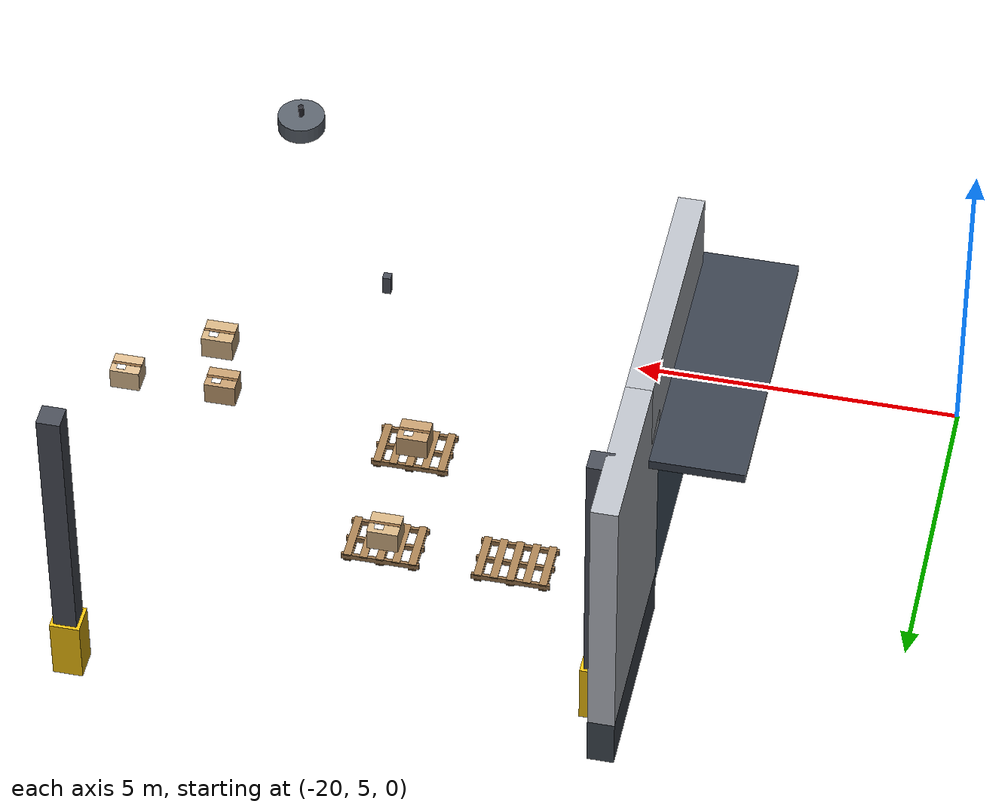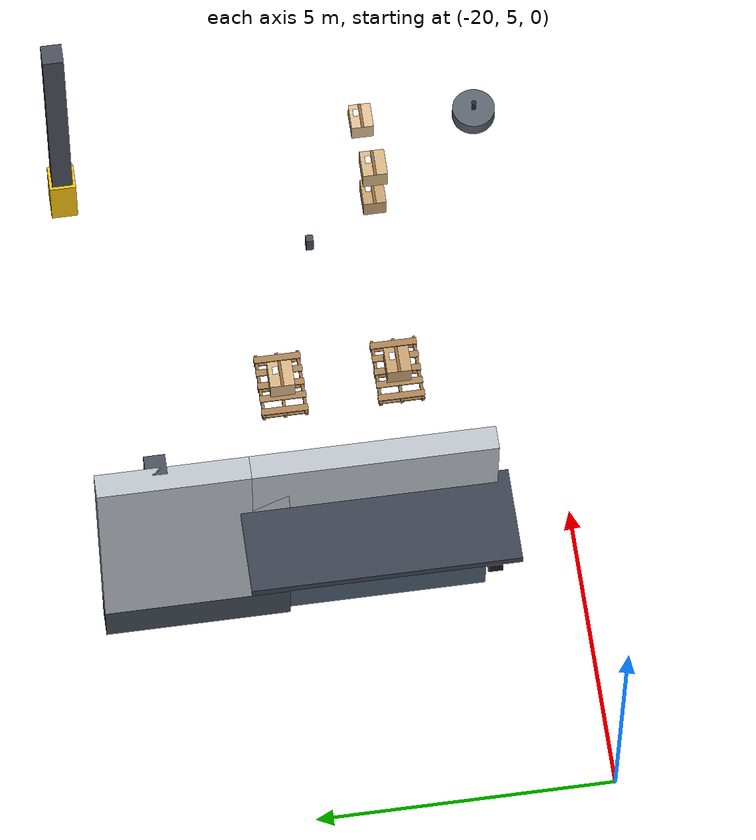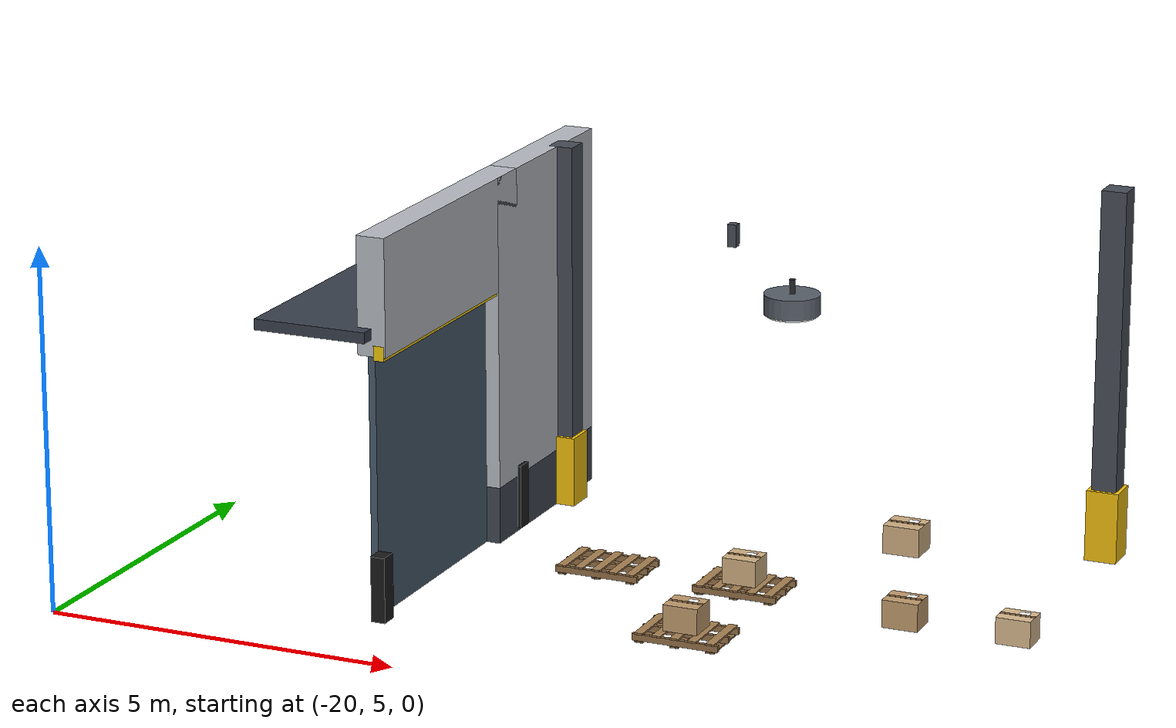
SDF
<sdf version="1.8">
 <world name="warehouse_3d">
  <model name="warehouse_architecture">
   <static>true</static>
   <link name="wall_west_n_base">
    <pose>-16.0000 11.4500 0.4000 0.0000 0.0000 0.0000</pose>
    <collision name="wall_west_n_base_col">
     <geometry><box><size>0.4000 3.1000 0.8000</size></box></geometry>
    </collision>
    <visual name="wall_west_n_base_vis">
     <geometry><box><size>0.4000 3.1000 0.8000</size></box></geometry>
     <material>
      <ambient>0.163 0.182 0.208 1.00</ambient>
      <diffuse>0.250 0.280 0.320 1.00</diffuse>
      <specular>0.15 0.15 0.15 1.0</specular>
     </material>
    </visual>
   </link>
   <link name="wall_west_n_upper">
    <pose>-16.0000 11.4500 3.0000 0.0000 0.0000 0.0000</pose>
    <collision name="wall_west_n_upper_col">
     <geometry><box><size>0.4000 3.1000 4.4000</size></box></geometry>
    </collision>
    <visual name="wall_west_n_upper_vis">
     <geometry><box><size>0.4000 3.1000 4.4000</size></box></geometry>
     <material>
      <ambient>0.468 0.481 0.501 1.00</ambient>
      <diffuse>0.720 0.740 0.770 1.00</diffuse>
      <specular>0.15 0.15 0.15 1.0</specular>
     </material>
    </visual>
   </link>
   <link name="dock_shutter_n_hdr">
    <pose>-16.0000 8.5000 4.4000 0.0000 0.0000 0.0000</pose>
    <collision name="dock_shutter_n_hdr_col">
     <geometry><box><size>0.4000 4.0000 1.6000</size></box></geometry>
    </collision>
    <visual name="dock_shutter_n_hdr_vis">
     <geometry><box><size>0.4000 4.0000 1.6000</size></box></geometry>
     <material>
      <ambient>0.468 0.481 0.501 1.00</ambient>
      <diffuse>0.720 0.740 0.770 1.00</diffuse>
      <specular>0.15 0.15 0.15 1.0</specular>
     </material>
    </visual>
   </link>
   <link name="rollup_door_inbound">
    <pose>-16.0500 8.5000 1.8000 0.0000 0.0000 0.0000</pose>
    <collision name="rollup_door_inbound_col">
     <geometry><box><size>0.1000 3.8000 3.6000</size></box></geometry>
    </collision>
    <visual name="rollup_door_inbound_vis">
     <geometry><box><size>0.1000 3.8000 3.6000</size></box></geometry>
     <material>
      <ambient>0.182 0.227 0.273 1.00</ambient>
      <diffuse>0.280 0.350 0.420 1.00</diffuse>
      <specular>0.15 0.15 0.15 1.0</specular>
     </material>
    </visual>
   </link>
   <link name="rollup_hazard_hdr_in">
    <pose>-15.9000 8.5000 3.6500 0.0000 0.0000 0.0000</pose>
    <collision name="rollup_hazard_hdr_in_col">
     <geometry><box><size>0.1500 4.0000 0.2000</size></box></geometry>
    </collision>
    <visual name="rollup_hazard_hdr_in_vis">
     <geometry><box><size>0.1500 4.0000 0.2000</size></box></geometry>
     <material>
      <ambient>0.617 0.520 0.033 1.00</ambient>
      <diffuse>0.950 0.800 0.050 1.00</diffuse>
      <specular>0.15 0.15 0.15 1.0</specular>
     </material>
    </visual>
   </link>
   <link name="dock_canopy_in">
    <pose>-16.8000 8.5000 3.9000 0.0000 0.0000 0.0000</pose>
    <collision name="dock_canopy_in_col">
     <geometry><box><size>1.6000 4.4000 0.1500</size></box></geometry>
    </collision>
    <visual name="dock_canopy_in_vis">
     <geometry><box><size>1.6000 4.4000 0.1500</size></box></geometry>
     <material>
      <ambient>0.143 0.163 0.195 1.00</ambient>
      <diffuse>0.220 0.250 0.300 1.00</diffuse>
      <specular>0.15 0.15 0.15 1.0</specular>
     </material>
    </visual>
   </link>
   <link name="dock_bumper_in_1">
    <pose>-15.8500 6.4000 0.5000 0.0000 0.0000 0.0000</pose>
    <collision name="dock_bumper_in_1_col">
     <geometry><box><size>0.2000 0.2500 0.9000</size></box></geometry>
    </collision>
    <visual name="dock_bumper_in_1_vis">
     <geometry><box><size>0.2000 0.2500 0.9000</size></box></geometry>
     <material>
      <ambient>0.065 0.065 0.065 1.00</ambient>
      <diffuse>0.100 0.100 0.100 1.00</diffuse>
      <specular>0.15 0.15 0.15 1.0</specular>
     </material>
    </visual>
   </link>
   <link name="dock_bumper_in_2">
    <pose>-15.8500 10.6000 0.5000 0.0000 0.0000 0.0000</pose>
    <collision name="dock_bumper_in_2_col">
     <geometry><box><size>0.2000 0.2500 0.9000</size></box></geometry>
    </collision>
    <visual name="dock_bumper_in_2_vis">
     <geometry><box><size>0.2000 0.2500 0.9000</size></box></geometry>
     <material>
      <ambient>0.065 0.065 0.065 1.00</ambient>
      <diffuse>0.100 0.100 0.100 1.00</diffuse>
      <specular>0.15 0.15 0.15 1.0</specular>
     </material>
    </visual>
   </link>
   <link name="col_3_base">
    <pose>-15.7500 12.0000 0.5000 0.0000 0.0000 0.0000</pose>
    <collision name="col_3_base_col"><geometry><box><size>0.4500 0.4500 1.0000</size></box></geometry></collision>
    <visual name="col_3_base_vis">
     <geometry><box><size>0.4500 0.4500 1.0000</size></box></geometry>
     <material>
      <ambient>0.617 0.488 0.033 1.00</ambient>
      <diffuse>0.950 0.750 0.050 1.00</diffuse>
      <specular>0.15 0.15 0.15 1.0</specular>
     </material>
    </visual>
   </link>
   <link name="col_3_stem">
    <pose>-15.7500 12.0000 3.1000 0.0000 0.0000 0.0000</pose>
    <collision name="col_3_stem_col"><geometry><box><size>0.3500 0.3500 4.2000</size></box></geometry></collision>
    <visual name="col_3_stem_vis">
     <geometry><box><size>0.3500 0.3500 4.2000</size></box></geometry>
     <material>
      <ambient>0.182 0.195 0.221 1.00</ambient>
      <diffuse>0.280 0.300 0.340 1.00</diffuse>
      <specular>0.15 0.15 0.15 1.0</specular>
     </material>
    </visual>
   </link>
   <link name="col_9_base">
    <pose>-8.0000 12.7500 0.5000 0.0000 0.0000 0.0000</pose>
    <collision name="col_9_base_col"><geometry><box><size>0.4500 0.4500 1.0000</size></box></geometry></collision>
    <visual name="col_9_base_vis">
     <geometry><box><size>0.4500 0.4500 1.0000</size></box></geometry>
     <material>
      <ambient>0.617 0.488 0.033 1.00</ambient>
      <diffuse>0.950 0.750 0.050 1.00</diffuse>
      <specular>0.15 0.15 0.15 1.0</specular>
     </material>
    </visual>
   </link>
   <link name="col_9_stem">
    <pose>-8.0000 12.7500 3.1000 0.0000 0.0000 0.0000</pose>
    <collision name="col_9_stem_col"><geometry><box><size>0.3500 0.3500 4.2000</size></box></geometry></collision>
    <visual name="col_9_stem_vis">
     <geometry><box><size>0.3500 0.3500 4.2000</size></box></geometry>
     <material>
      <ambient>0.182 0.195 0.221 1.00</ambient>
      <diffuse>0.280 0.300 0.340 1.00</diffuse>
      <specular>0.15 0.15 0.15 1.0</specular>
     </material>
    </visual>
   </link>
   <link name="truss_web_3_0">
    <pose>-12.0000 9.0000 5.0500 0.0000 0.0000 0.0000</pose>
    <visual name="truss_web_3_0_vis">
     <geometry><box><size>0.1200 0.1200 0.3000</size></box></geometry>
     <material>
      <ambient>0.182 0.195 0.221 1.00</ambient>
      <diffuse>0.280 0.300 0.340 1.00</diffuse>
      <specular>0.15 0.15 0.15 1.0</specular>
     </material>
    </visual>
   </link>
   <link name="fixture_bell_2">
    <pose>-10.0000 6.0000 5.1500 0.0000 0.0000 0.0000</pose>
    <visual name="fixture_bell_2_vis">
     <geometry><cylinder><radius>0.3500</radius><length>0.2500</length></cylinder></geometry>
     <material>
      <ambient>0.227 0.247 0.273 1.00</ambient>
      <diffuse>0.350 0.380 0.420 1.00</diffuse>
      <specular>0.2 0.2 0.2 1.0</specular>
     </material>
    </visual>
   </link>
   <link name="fixture_stem_2">
    <pose>-10.0000 6.0000 5.3500 0.0000 0.0000 0.0000</pose>
    <visual name="fixture_stem_2_vis">
     <geometry><cylinder><radius>0.0400</radius><length>0.2000</length></cylinder></geometry>
     <material>
      <ambient>0.098 0.098 0.117 1.00</ambient>
      <diffuse>0.150 0.150 0.180 1.00</diffuse>
      <specular>0.2 0.2 0.2 1.0</specular>
     </material>
    </visual>
   </link>
   <link name="fixture_lens_2">
    <pose>-10.0000 6.0000 5.0200 0.0000 0.0000 0.0000</pose>
    <visual name="fixture_lens_2_vis">
     <geometry><cylinder><radius>0.3200</radius><length>0.0400</length></cylinder></geometry>
     <material>
      <ambient>0.617 0.637 0.650 1.00</ambient>
      <diffuse>0.950 0.980 1.000 1.00</diffuse>
      <specular>0.2 0.2 0.2 1.0</specular>
      <emissive>0.850 0.880 0.950 1.0</emissive>
     </material>
    </visual>
   </link>
  </model>
  <model name="pallet_dock_1">
   <static>true</static>
   <pose>-12.00 9.50 0.00 0 0 0</pose>
   <link name="stringer_0">
    <pose>0.0000 -0.3600 0.0650 0.0000 0.0000 0.0000</pose>
    <collision name="stringer_0_col"><geometry><box><size>1.2000 0.0500 0.0900</size></box></geometry></collision>
    <visual name="stringer_0_vis">
     <geometry><box><size>1.2000 0.0500 0.0900</size></box></geometry>
     <material>
      <ambient>0.377 0.286 0.182 1.00</ambient>
      <diffuse>0.580 0.440 0.280 1.00</diffuse>
      <specular>0.15 0.15 0.15 1.0</specular>
     </material>
    </visual>
   </link>
   <link name="stringer_1">
    <pose>0.0000 0.0000 0.0650 0.0000 0.0000 0.0000</pose>
    <collision name="stringer_1_col"><geometry><box><size>1.2000 0.0500 0.0900</size></box></geometry></collision>
    <visual name="stringer_1_vis">
     <geometry><box><size>1.2000 0.0500 0.0900</size></box></geometry>
     <material>
      <ambient>0.377 0.286 0.182 1.00</ambient>
      <diffuse>0.580 0.440 0.280 1.00</diffuse>
      <specular>0.15 0.15 0.15 1.0</specular>
     </material>
    </visual>
   </link>
   <link name="stringer_2">
    <pose>0.0000 0.3600 0.0650 0.0000 0.0000 0.0000</pose>
    <collision name="stringer_2_col"><geometry><box><size>1.2000 0.0500 0.0900</size></box></geometry></collision>
    <visual name="stringer_2_vis">
     <geometry><box><size>1.2000 0.0500 0.0900</size></box></geometry>
     <material>
      <ambient>0.377 0.286 0.182 1.00</ambient>
      <diffuse>0.580 0.440 0.280 1.00</diffuse>
      <specular>0.15 0.15 0.15 1.0</specular>
     </material>
    </visual>
   </link>
   <link name="top_slat_0">
    <pose>-0.5000 0.0000 0.1200 0.0000 0.0000 0.0000</pose>
    <collision name="top_slat_0_col"><geometry><box><size>0.1200 0.8000 0.0220</size></box></geometry></collision>
    <visual name="top_slat_0_vis">
     <geometry><box><size>0.1200 0.8000 0.0220</size></box></geometry>
     <material>
      <ambient>0.423 0.325 0.208 1.00</ambient>
      <diffuse>0.650 0.500 0.320 1.00</diffuse>
      <specular>0.15 0.15 0.15 1.0</specular>
     </material>
    </visual>
   </link>
   <link name="top_slat_1">
    <pose>-0.2500 0.0000 0.1200 0.0000 0.0000 0.0000</pose>
    <collision name="top_slat_1_col"><geometry><box><size>0.1200 0.8000 0.0220</size></box></geometry></collision>
    <visual name="top_slat_1_vis">
     <geometry><box><size>0.1200 0.8000 0.0220</size></box></geometry>
     <material>
      <ambient>0.423 0.325 0.208 1.00</ambient>
      <diffuse>0.650 0.500 0.320 1.00</diffuse>
      <specular>0.15 0.15 0.15 1.0</specular>
     </material>
    </visual>
   </link>
   <link name="top_slat_2">
    <pose>0.0000 0.0000 0.1200 0.0000 0.0000 0.0000</pose>
    <collision name="top_slat_2_col"><geometry><box><size>0.1200 0.8000 0.0220</size></box></geometry></collision>
    <visual name="top_slat_2_vis">
     <geometry><box><size>0.1200 0.8000 0.0220</size></box></geometry>
     <material>
      <ambient>0.423 0.325 0.208 1.00</ambient>
      <diffuse>0.650 0.500 0.320 1.00</diffuse>
      <specular>0.15 0.15 0.15 1.0</specular>
     </material>
    </visual>
   </link>
   <link name="top_slat_3">
    <pose>0.2500 0.0000 0.1200 0.0000 0.0000 0.0000</pose>
    <collision name="top_slat_3_col"><geometry><box><size>0.1200 0.8000 0.0220</size></box></geometry></collision>
    <visual name="top_slat_3_vis">
     <geometry><box><size>0.1200 0.8000 0.0220</size></box></geometry>
     <material>
      <ambient>0.423 0.325 0.208 1.00</ambient>
      <diffuse>0.650 0.500 0.320 1.00</diffuse>
      <specular>0.15 0.15 0.15 1.0</specular>
     </material>
    </visual>
   </link>
   <link name="top_slat_4">
    <pose>0.5000 0.0000 0.1200 0.0000 0.0000 0.0000</pose>
    <collision name="top_slat_4_col"><geometry><box><size>0.1200 0.8000 0.0220</size></box></geometry></collision>
    <visual name="top_slat_4_vis">
     <geometry><box><size>0.1200 0.8000 0.0220</size></box></geometry>
     <material>
      <ambient>0.423 0.325 0.208 1.00</ambient>
      <diffuse>0.650 0.500 0.320 1.00</diffuse>
      <specular>0.15 0.15 0.15 1.0</specular>
     </material>
    </visual>
   </link>
   <link name="bot_slat_0">
    <pose>-0.5000 0.0000 0.0100 0.0000 0.0000 0.0000</pose>
    <collision name="bot_slat_0_col"><geometry><box><size>0.1200 0.8000 0.0200</size></box></geometry></collision>
    <visual name="bot_slat_0_vis">
     <geometry><box><size>0.1200 0.8000 0.0200</size></box></geometry>
     <material>
      <ambient>0.358 0.273 0.169 1.00</ambient>
      <diffuse>0.550 0.420 0.260 1.00</diffuse>
      <specular>0.15 0.15 0.15 1.0</specular>
     </material>
    </visual>
   </link>
   <link name="bot_slat_1">
    <pose>0.0000 0.0000 0.0100 0.0000 0.0000 0.0000</pose>
    <collision name="bot_slat_1_col"><geometry><box><size>0.1200 0.8000 0.0200</size></box></geometry></collision>
    <visual name="bot_slat_1_vis">
     <geometry><box><size>0.1200 0.8000 0.0200</size></box></geometry>
     <material>
      <ambient>0.358 0.273 0.169 1.00</ambient>
      <diffuse>0.550 0.420 0.260 1.00</diffuse>
      <specular>0.15 0.15 0.15 1.0</specular>
     </material>
    </visual>
   </link>
   <link name="bot_slat_2">
    <pose>0.5000 0.0000 0.0100 0.0000 0.0000 0.0000</pose>
    <collision name="bot_slat_2_col"><geometry><box><size>0.1200 0.8000 0.0200</size></box></geometry></collision>
    <visual name="bot_slat_2_vis">
     <geometry><box><size>0.1200 0.8000 0.0200</size></box></geometry>
     <material>
      <ambient>0.358 0.273 0.169 1.00</ambient>
      <diffuse>0.550 0.420 0.260 1.00</diffuse>
      <specular>0.15 0.15 0.15 1.0</specular>
     </material>
    </visual>
   </link>
  </model>
  <model name="pallet_dock_2">
   <static>true</static>
   <pose>-12.00 7.50 0.00 0 0 0</pose>
   <link name="stringer_0">
    <pose>0.0000 -0.3600 0.0650 0.0000 0.0000 0.0000</pose>
    <collision name="stringer_0_col"><geometry><box><size>1.2000 0.0500 0.0900</size></box></geometry></collision>
    <visual name="stringer_0_vis">
     <geometry><box><size>1.2000 0.0500 0.0900</size></box></geometry>
     <material>
      <ambient>0.377 0.286 0.182 1.00</ambient>
      <diffuse>0.580 0.440 0.280 1.00</diffuse>
      <specular>0.15 0.15 0.15 1.0</specular>
     </material>
    </visual>
   </link>
   <link name="stringer_1">
    <pose>0.0000 0.0000 0.0650 0.0000 0.0000 0.0000</pose>
    <collision name="stringer_1_col"><geometry><box><size>1.2000 0.0500 0.0900</size></box></geometry></collision>
    <visual name="stringer_1_vis">
     <geometry><box><size>1.2000 0.0500 0.0900</size></box></geometry>
     <material>
      <ambient>0.377 0.286 0.182 1.00</ambient>
      <diffuse>0.580 0.440 0.280 1.00</diffuse>
      <specular>0.15 0.15 0.15 1.0</specular>
     </material>
    </visual>
   </link>
   <link name="stringer_2">
    <pose>0.0000 0.3600 0.0650 0.0000 0.0000 0.0000</pose>
    <collision name="stringer_2_col"><geometry><box><size>1.2000 0.0500 0.0900</size></box></geometry></collision>
    <visual name="stringer_2_vis">
     <geometry><box><size>1.2000 0.0500 0.0900</size></box></geometry>
     <material>
      <ambient>0.377 0.286 0.182 1.00</ambient>
      <diffuse>0.580 0.440 0.280 1.00</diffuse>
      <specular>0.15 0.15 0.15 1.0</specular>
     </material>
    </visual>
   </link>
   <link name="top_slat_0">
    <pose>-0.5000 0.0000 0.1200 0.0000 0.0000 0.0000</pose>
    <collision name="top_slat_0_col"><geometry><box><size>0.1200 0.8000 0.0220</size></box></geometry></collision>
    <visual name="top_slat_0_vis">
     <geometry><box><size>0.1200 0.8000 0.0220</size></box></geometry>
     <material>
      <ambient>0.423 0.325 0.208 1.00</ambient>
      <diffuse>0.650 0.500 0.320 1.00</diffuse>
      <specular>0.15 0.15 0.15 1.0</specular>
     </material>
    </visual>
   </link>
   <link name="top_slat_1">
    <pose>-0.2500 0.0000 0.1200 0.0000 0.0000 0.0000</pose>
    <collision name="top_slat_1_col"><geometry><box><size>0.1200 0.8000 0.0220</size></box></geometry></collision>
    <visual name="top_slat_1_vis">
     <geometry><box><size>0.1200 0.8000 0.0220</size></box></geometry>
     <material>
      <ambient>0.423 0.325 0.208 1.00</ambient>
      <diffuse>0.650 0.500 0.320 1.00</diffuse>
      <specular>0.15 0.15 0.15 1.0</specular>
     </material>
    </visual>
   </link>
   <link name="top_slat_2">
    <pose>0.0000 0.0000 0.1200 0.0000 0.0000 0.0000</pose>
    <collision name="top_slat_2_col"><geometry><box><size>0.1200 0.8000 0.0220</size></box></geometry></collision>
    <visual name="top_slat_2_vis">
     <geometry><box><size>0.1200 0.8000 0.0220</size></box></geometry>
     <material>
      <ambient>0.423 0.325 0.208 1.00</ambient>
      <diffuse>0.650 0.500 0.320 1.00</diffuse>
      <specular>0.15 0.15 0.15 1.0</specular>
     </material>
    </visual>
   </link>
   <link name="top_slat_3">
    <pose>0.2500 0.0000 0.1200 0.0000 0.0000 0.0000</pose>
    <collision name="top_slat_3_col"><geometry><box><size>0.1200 0.8000 0.0220</size></box></geometry></collision>
    <visual name="top_slat_3_vis">
     <geometry><box><size>0.1200 0.8000 0.0220</size></box></geometry>
     <material>
      <ambient>0.423 0.325 0.208 1.00</ambient>
      <diffuse>0.650 0.500 0.320 1.00</diffuse>
      <specular>0.15 0.15 0.15 1.0</specular>
     </material>
    </visual>
   </link>
   <link name="top_slat_4">
    <pose>0.5000 0.0000 0.1200 0.0000 0.0000 0.0000</pose>
    <collision name="top_slat_4_col"><geometry><box><size>0.1200 0.8000 0.0220</size></box></geometry></collision>
    <visual name="top_slat_4_vis">
     <geometry><box><size>0.1200 0.8000 0.0220</size></box></geometry>
     <material>
      <ambient>0.423 0.325 0.208 1.00</ambient>
      <diffuse>0.650 0.500 0.320 1.00</diffuse>
      <specular>0.15 0.15 0.15 1.0</specular>
     </material>
    </visual>
   </link>
   <link name="bot_slat_0">
    <pose>-0.5000 0.0000 0.0100 0.0000 0.0000 0.0000</pose>
    <collision name="bot_slat_0_col"><geometry><box><size>0.1200 0.8000 0.0200</size></box></geometry></collision>
    <visual name="bot_slat_0_vis">
     <geometry><box><size>0.1200 0.8000 0.0200</size></box></geometry>
     <material>
      <ambient>0.358 0.273 0.169 1.00</ambient>
      <diffuse>0.550 0.420 0.260 1.00</diffuse>
      <specular>0.15 0.15 0.15 1.0</specular>
     </material>
    </visual>
   </link>
   <link name="bot_slat_1">
    <pose>0.0000 0.0000 0.0100 0.0000 0.0000 0.0000</pose>
    <collision name="bot_slat_1_col"><geometry><box><size>0.1200 0.8000 0.0200</size></box></geometry></collision>
    <visual name="bot_slat_1_vis">
     <geometry><box><size>0.1200 0.8000 0.0200</size></box></geometry>
     <material>
      <ambient>0.358 0.273 0.169 1.00</ambient>
      <diffuse>0.550 0.420 0.260 1.00</diffuse>
      <specular>0.15 0.15 0.15 1.0</specular>
     </material>
    </visual>
   </link>
   <link name="bot_slat_2">
    <pose>0.5000 0.0000 0.0100 0.0000 0.0000 0.0000</pose>
    <collision name="bot_slat_2_col"><geometry><box><size>0.1200 0.8000 0.0200</size></box></geometry></collision>
    <visual name="bot_slat_2_vis">
     <geometry><box><size>0.1200 0.8000 0.0200</size></box></geometry>
     <material>
      <ambient>0.358 0.273 0.169 1.00</ambient>
      <diffuse>0.550 0.420 0.260 1.00</diffuse>
      <specular>0.15 0.15 0.15 1.0</specular>
     </material>
    </visual>
   </link>
  </model>
  <model name="pallet_stage_dock">
   <static>true</static>
   <pose>-14.00 9.50 0.00 0 0 0</pose>
   <link name="stringer_0">
    <pose>0.0000 -0.3600 0.0650 0.0000 0.0000 0.0000</pose>
    <collision name="stringer_0_col"><geometry><box><size>1.2000 0.0500 0.0900</size></box></geometry></collision>
    <visual name="stringer_0_vis">
     <geometry><box><size>1.2000 0.0500 0.0900</size></box></geometry>
     <material>
      <ambient>0.377 0.286 0.182 1.00</ambient>
      <diffuse>0.580 0.440 0.280 1.00</diffuse>
      <specular>0.15 0.15 0.15 1.0</specular>
     </material>
    </visual>
   </link>
   <link name="stringer_1">
    <pose>0.0000 0.0000 0.0650 0.0000 0.0000 0.0000</pose>
    <collision name="stringer_1_col"><geometry><box><size>1.2000 0.0500 0.0900</size></box></geometry></collision>
    <visual name="stringer_1_vis">
     <geometry><box><size>1.2000 0.0500 0.0900</size></box></geometry>
     <material>
      <ambient>0.377 0.286 0.182 1.00</ambient>
      <diffuse>0.580 0.440 0.280 1.00</diffuse>
      <specular>0.15 0.15 0.15 1.0</specular>
     </material>
    </visual>
   </link>
   <link name="stringer_2">
    <pose>0.0000 0.3600 0.0650 0.0000 0.0000 0.0000</pose>
    <collision name="stringer_2_col"><geometry><box><size>1.2000 0.0500 0.0900</size></box></geometry></collision>
    <visual name="stringer_2_vis">
     <geometry><box><size>1.2000 0.0500 0.0900</size></box></geometry>
     <material>
      <ambient>0.377 0.286 0.182 1.00</ambient>
      <diffuse>0.580 0.440 0.280 1.00</diffuse>
      <specular>0.15 0.15 0.15 1.0</specular>
     </material>
    </visual>
   </link>
   <link name="top_slat_0">
    <pose>-0.5000 0.0000 0.1200 0.0000 0.0000 0.0000</pose>
    <collision name="top_slat_0_col"><geometry><box><size>0.1200 0.8000 0.0220</size></box></geometry></collision>
    <visual name="top_slat_0_vis">
     <geometry><box><size>0.1200 0.8000 0.0220</size></box></geometry>
     <material>
      <ambient>0.423 0.325 0.208 1.00</ambient>
      <diffuse>0.650 0.500 0.320 1.00</diffuse>
      <specular>0.15 0.15 0.15 1.0</specular>
     </material>
    </visual>
   </link>
   <link name="top_slat_1">
    <pose>-0.2500 0.0000 0.1200 0.0000 0.0000 0.0000</pose>
    <collision name="top_slat_1_col"><geometry><box><size>0.1200 0.8000 0.0220</size></box></geometry></collision>
    <visual name="top_slat_1_vis">
     <geometry><box><size>0.1200 0.8000 0.0220</size></box></geometry>
     <material>
      <ambient>0.423 0.325 0.208 1.00</ambient>
      <diffuse>0.650 0.500 0.320 1.00</diffuse>
      <specular>0.15 0.15 0.15 1.0</specular>
     </material>
    </visual>
   </link>
   <link name="top_slat_2">
    <pose>0.0000 0.0000 0.1200 0.0000 0.0000 0.0000</pose>
    <collision name="top_slat_2_col"><geometry><box><size>0.1200 0.8000 0.0220</size></box></geometry></collision>
    <visual name="top_slat_2_vis">
     <geometry><box><size>0.1200 0.8000 0.0220</size></box></geometry>
     <material>
      <ambient>0.423 0.325 0.208 1.00</ambient>
      <diffuse>0.650 0.500 0.320 1.00</diffuse>
      <specular>0.15 0.15 0.15 1.0</specular>
     </material>
    </visual>
   </link>
   <link name="top_slat_3">
    <pose>0.2500 0.0000 0.1200 0.0000 0.0000 0.0000</pose>
    <collision name="top_slat_3_col"><geometry><box><size>0.1200 0.8000 0.0220</size></box></geometry></collision>
    <visual name="top_slat_3_vis">
     <geometry><box><size>0.1200 0.8000 0.0220</size></box></geometry>
     <material>
      <ambient>0.423 0.325 0.208 1.00</ambient>
      <diffuse>0.650 0.500 0.320 1.00</diffuse>
      <specular>0.15 0.15 0.15 1.0</specular>
     </material>
    </visual>
   </link>
   <link name="top_slat_4">
    <pose>0.5000 0.0000 0.1200 0.0000 0.0000 0.0000</pose>
    <collision name="top_slat_4_col"><geometry><box><size>0.1200 0.8000 0.0220</size></box></geometry></collision>
    <visual name="top_slat_4_vis">
     <geometry><box><size>0.1200 0.8000 0.0220</size></box></geometry>
     <material>
      <ambient>0.423 0.325 0.208 1.00</ambient>
      <diffuse>0.650 0.500 0.320 1.00</diffuse>
      <specular>0.15 0.15 0.15 1.0</specular>
     </material>
    </visual>
   </link>
   <link name="bot_slat_0">
    <pose>-0.5000 0.0000 0.0100 0.0000 0.0000 0.0000</pose>
    <collision name="bot_slat_0_col"><geometry><box><size>0.1200 0.8000 0.0200</size></box></geometry></collision>
    <visual name="bot_slat_0_vis">
     <geometry><box><size>0.1200 0.8000 0.0200</size></box></geometry>
     <material>
      <ambient>0.358 0.273 0.169 1.00</ambient>
      <diffuse>0.550 0.420 0.260 1.00</diffuse>
      <specular>0.15 0.15 0.15 1.0</specular>
     </material>
    </visual>
   </link>
   <link name="bot_slat_1">
    <pose>0.0000 0.0000 0.0100 0.0000 0.0000 0.0000</pose>
    <collision name="bot_slat_1_col"><geometry><box><size>0.1200 0.8000 0.0200</size></box></geometry></collision>
    <visual name="bot_slat_1_vis">
     <geometry><box><size>0.1200 0.8000 0.0200</size></box></geometry>
     <material>
      <ambient>0.358 0.273 0.169 1.00</ambient>
      <diffuse>0.550 0.420 0.260 1.00</diffuse>
      <specular>0.15 0.15 0.15 1.0</specular>
     </material>
    </visual>
   </link>
   <link name="bot_slat_2">
    <pose>0.5000 0.0000 0.0100 0.0000 0.0000 0.0000</pose>
    <collision name="bot_slat_2_col"><geometry><box><size>0.1200 0.8000 0.0200</size></box></geometry></collision>
    <visual name="bot_slat_2_vis">
     <geometry><box><size>0.1200 0.8000 0.0200</size></box></geometry>
     <material>
      <ambient>0.358 0.273 0.169 1.00</ambient>
      <diffuse>0.550 0.420 0.260 1.00</diffuse>
      <specular>0.15 0.15 0.15 1.0</specular>
     </material>
    </visual>
   </link>
  </model>
  <model name="package_P041">
   <static>true</static>
   <pose>-9.00 7.50 0.82 0 0 0</pose>
   <link name="box_link">
    <collision name="box_col"><geometry><box><size>0.48 0.39 0.37</size></box></geometry></collision>
    <visual name="box_vis">
     <geometry><box><size>0.48 0.39 0.37</size></box></geometry>
     <material>
      <ambient>0.53 0.43 0.30 1.0</ambient>
      <diffuse>0.76 0.61 0.43 1.0</diffuse>
      <specular>0.08 0.08 0.08 1.0</specular>
     </material>
    </visual>
    <visual name="top_tape">
     <pose>0 0 0.1860 0 0 0</pose>
     <geometry><box><size>0.482 0.05 0.002</size></box></geometry>
     <material><ambient>0.48 0.35 0.20 1.0</ambient><diffuse>0.55 0.40 0.24 1.0</diffuse></material>
    </visual>
    <visual name="shipping_label">
     <pose>0.072 0.078 0.1870 0 0 0</pose>
     <geometry><box><size>0.14 0.10 0.002</size></box></geometry>
     <material><ambient>0.92 0.92 0.92 1.0</ambient><diffuse>0.98 0.98 0.98 1.0</diffuse></material>
    </visual>
   </link>
  </model>
  <model name="package_P042">
   <static>true</static>
   <pose>-7.50 7.50 0.82 0 0 0</pose>
   <link name="box_link">
    <collision name="box_col"><geometry><box><size>0.46 0.38 0.35</size></box></geometry></collision>
    <visual name="box_vis">
     <geometry><box><size>0.46 0.38 0.35</size></box></geometry>
     <material>
      <ambient>0.60 0.51 0.39 1.0</ambient>
      <diffuse>0.86 0.73 0.56 1.0</diffuse>
      <specular>0.08 0.08 0.08 1.0</specular>
     </material>
    </visual>
    <visual name="top_tape">
     <pose>0 0 0.1760 0 0 0</pose>
     <geometry><box><size>0.462 0.05 0.002</size></box></geometry>
     <material><ambient>0.48 0.35 0.20 1.0</ambient><diffuse>0.55 0.40 0.24 1.0</diffuse></material>
    </visual>
    <visual name="shipping_label">
     <pose>0.069 0.076 0.1770 0 0 0</pose>
     <geometry><box><size>0.14 0.10 0.002</size></box></geometry>
     <material><ambient>0.92 0.92 0.92 1.0</ambient><diffuse>0.98 0.98 0.98 1.0</diffuse></material>
    </visual>
   </link>
  </model>
  <model name="package_P046">
   <static>true</static>
   <pose>-9.00 7.50 1.82 0 0 0</pose>
   <link name="box_link">
    <collision name="box_col"><geometry><box><size>0.48 0.42 0.37</size></box></geometry></collision>
    <visual name="box_vis">
     <geometry><box><size>0.48 0.42 0.37</size></box></geometry>
     <material>
      <ambient>0.57 0.48 0.36 1.0</ambient>
      <diffuse>0.82 0.69 0.51 1.0</diffuse>
      <specular>0.08 0.08 0.08 1.0</specular>
     </material>
    </visual>
    <visual name="top_tape">
     <pose>0 0 0.1860 0 0 0</pose>
     <geometry><box><size>0.482 0.05 0.002</size></box></geometry>
     <material><ambient>0.48 0.35 0.20 1.0</ambient><diffuse>0.55 0.40 0.24 1.0</diffuse></material>
    </visual>
    <visual name="shipping_label">
     <pose>0.072 0.084 0.1870 0 0 0</pose>
     <geometry><box><size>0.14 0.10 0.002</size></box></geometry>
     <material><ambient>0.92 0.92 0.92 1.0</ambient><diffuse>0.98 0.98 0.98 1.0</diffuse></material>
    </visual>
   </link>
  </model>
  <model name="package_P091">
   <static>true</static>
   <pose>-12.00 9.50 0.32 0 0 0</pose>
   <link name="box_link">
    <collision name="box_col"><geometry><box><size>0.48 0.42 0.36</size></box></geometry></collision>
    <visual name="box_vis">
     <geometry><box><size>0.48 0.42 0.36</size></box></geometry>
     <material>
      <ambient>0.57 0.48 0.36 1.0</ambient>
      <diffuse>0.82 0.69 0.51 1.0</diffuse>
      <specular>0.08 0.08 0.08 1.0</specular>
     </material>
    </visual>
    <visual name="top_tape">
     <pose>0 0 0.1810 0 0 0</pose>
     <geometry><box><size>0.482 0.05 0.002</size></box></geometry>
     <material><ambient>0.48 0.35 0.20 1.0</ambient><diffuse>0.55 0.40 0.24 1.0</diffuse></material>
    </visual>
    <visual name="shipping_label">
     <pose>0.072 0.084 0.1820 0 0 0</pose>
     <geometry><box><size>0.14 0.10 0.002</size></box></geometry>
     <material><ambient>0.92 0.92 0.92 1.0</ambient><diffuse>0.98 0.98 0.98 1.0</diffuse></material>
    </visual>
   </link>
  </model>
  <model name="package_P092">
   <static>true</static>
   <pose>-12.00 7.50 0.32 0 0 0</pose>
   <link name="box_link">
    <collision name="box_col"><geometry><box><size>0.48 0.42 0.36</size></box></geometry></collision>
    <visual name="box_vis">
     <geometry><box><size>0.48 0.42 0.36</size></box></geometry>
     <material>
      <ambient>0.53 0.43 0.30 1.0</ambient>
      <diffuse>0.76 0.61 0.43 1.0</diffuse>
      <specular>0.08 0.08 0.08 1.0</specular>
     </material>
    </visual>
    <visual name="top_tape">
     <pose>0 0 0.1810 0 0 0</pose>
     <geometry><box><size>0.482 0.05 0.002</size></box></geometry>
     <material><ambient>0.48 0.35 0.20 1.0</ambient><diffuse>0.55 0.40 0.24 1.0</diffuse></material>
    </visual>
    <visual name="shipping_label">
     <pose>0.072 0.084 0.1820 0 0 0</pose>
     <geometry><box><size>0.14 0.10 0.002</size></box></geometry>
     <material><ambient>0.92 0.92 0.92 1.0</ambient><diffuse>0.98 0.98 0.98 1.0</diffuse></material>
    </visual>
   </link>
  </model>
 </world>
</sdf>
